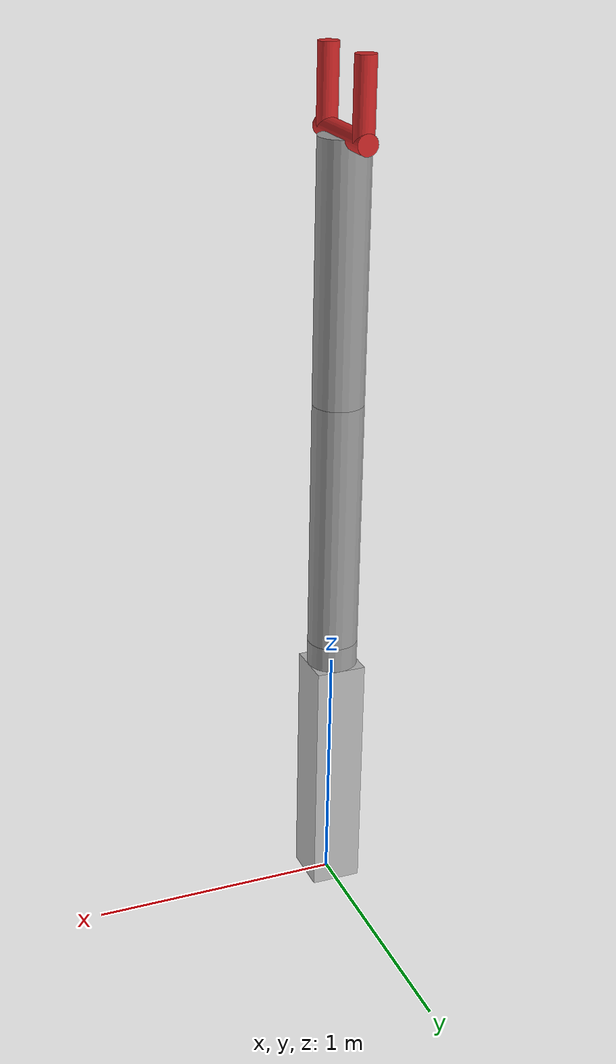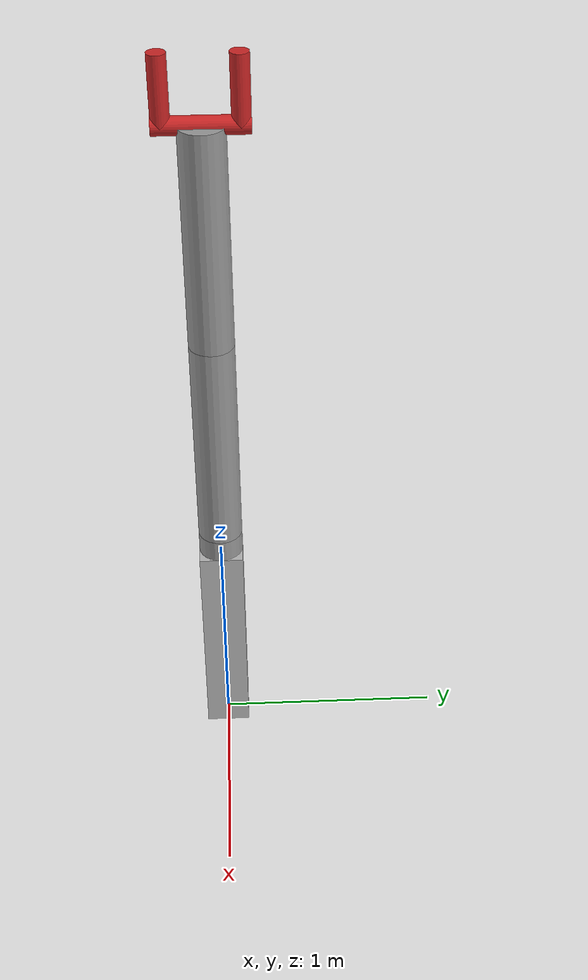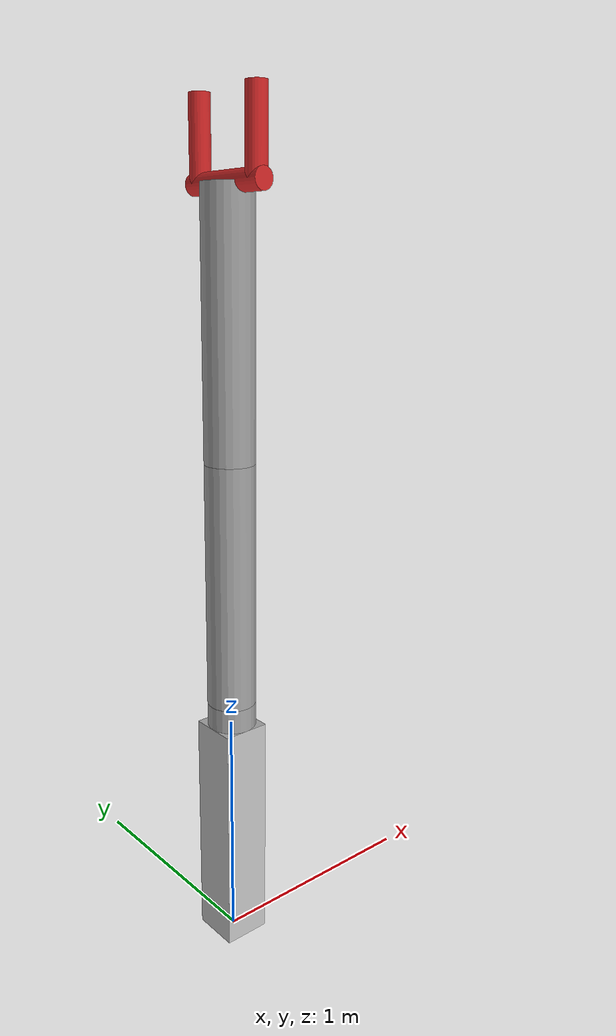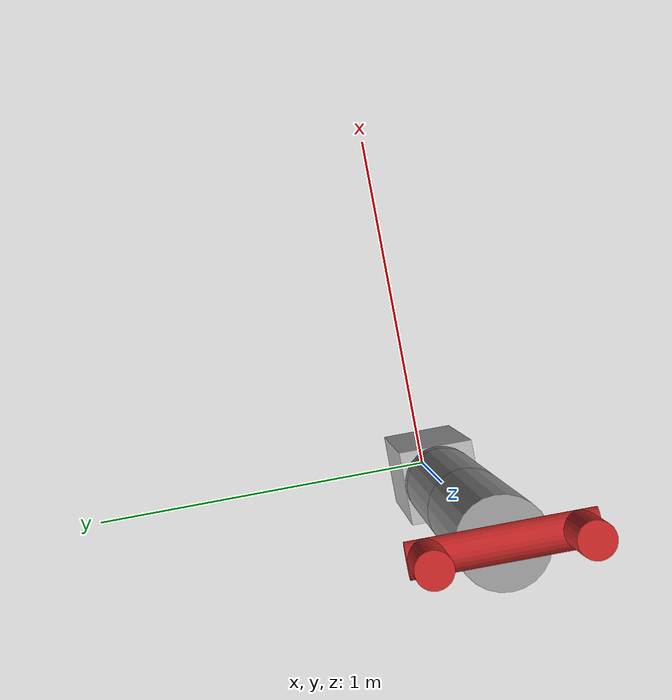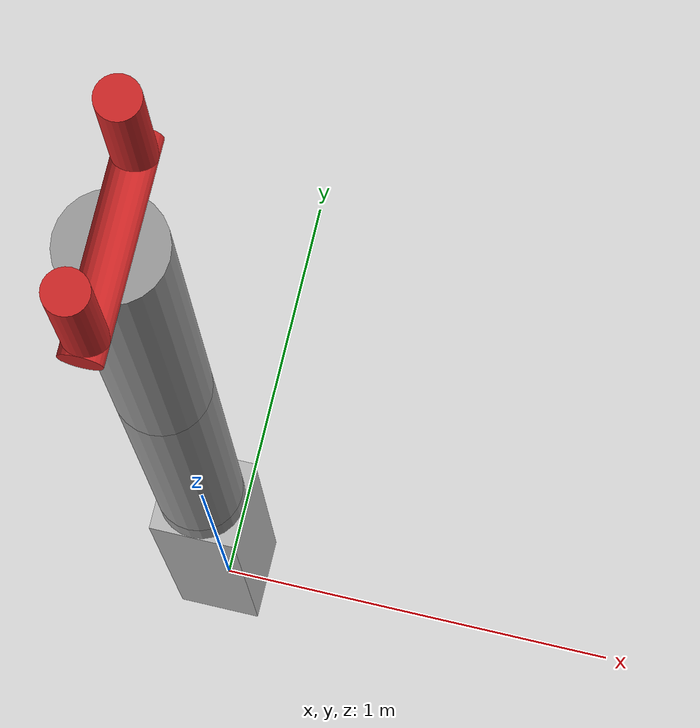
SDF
<?xml version="1.0" encoding="UTF-8"?>
<sdf version='1.5'>
  <model name='gripper_robot'>
    <link name='base_link'>
      <pose frame=''>0 0 0 0 -0 0</pose>
      <inertial>
        <pose frame=''>0 0 0.5 0 -0 0</pose>
        <mass>1</mass>
        <inertia>
          <ixx>1</ixx>
          <ixy>0</ixy>
          <ixz>0</ixz>
          <iyy>1</iyy>
          <iyz>0</iyz>
          <izz>1</izz>
        </inertia>
      </inertial>
      <collision name='base_link_collision'>
        <pose frame=''>0 0 0.5 0 -0 0</pose>
        <geometry>
          <box>
            <size>0.2 0.2 0.7</size>
          </box>
        </geometry>
      </collision>
      <visual name='base_link_visual'>
        <pose frame=''>0 0 0.5 0 -0 0</pose>
        <geometry>
          <box>
            <size>0.2 0.2 1</size>
          </box>
        </geometry>
      </visual>
    </link>
    <joint name='joint_fix' type='revolute'>
      <child>base_link</child>
      <parent>world</parent>
      <axis>
        <limit>
          <lower>0</lower>
          <upper>0</upper>
        </limit>
        <dynamics>
          <damping>0</damping>
          <friction>0</friction>
          <spring_reference>0</spring_reference>
          <spring_stiffness>0</spring_stiffness>
        </dynamics>
        <use_parent_model_frame>1</use_parent_model_frame>
        <xyz>0 0 1</xyz>
      </axis>
    </joint>
    <link name='link1'>
      <pose frame=''>0 0 1 0 -0 0</pose>
      <inertial>
        <pose frame=''>0 0 0.05 0 -0 0</pose>
        <mass>1</mass>
        <inertia>
          <ixx>0.001</ixx>
          <ixy>0</ixy>
          <ixz>0</ixz>
          <iyy>0.001</iyy>
          <iyz>0</iyz>
          <izz>0.001</izz>
        </inertia>
      </inertial>
      <collision name='link1_collision'>
        <pose frame=''>0 0 0.05 0 -0 0</pose>
        <geometry>
          <cylinder>
            <length>0.1</length>
            <radius>0.1</radius>
          </cylinder>
        </geometry>
        <surface>
          <contact>
            <ode/>
          </contact>
          <friction>
            <ode/>
          </friction>
        </surface>
      </collision>
      <visual name='link1_visual'>
        <pose frame=''>0 0 0.05 0 -0 0</pose>
        <geometry>
          <cylinder>
            <length>0.1</length>
            <radius>0.1</radius>
          </cylinder>
        </geometry>
        <material>
          <script>
            <name>Gazebo/Grey</name>
            <uri>__default__</uri>
          </script>
        </material>
      </visual>
      <gravity>1</gravity>
      <velocity_decay/>
      <self_collide>0</self_collide>
    </link>
    <joint name='joint1' type='revolute'>
      <child>link1</child>
      <parent>base_link</parent>
      <axis>
        <xyz>0 0 1</xyz>
        <limit>
          <lower>-1.5708</lower>
          <upper>1.5708</upper>
          <effort>100</effort>
          <velocity>100</velocity>
        </limit>
        <dynamics>
          <spring_reference>0</spring_reference>
          <spring_stiffness>0</spring_stiffness>
        </dynamics>
        <use_parent_model_frame>1</use_parent_model_frame>
      </axis>
    </joint>
    <link name='link2'>
      <pose frame=''>0 0 1.1 0 -0 0</pose>
      <inertial>
        <pose frame=''>0 0 0.5 0 -0 0</pose>
        <mass>1</mass>
        <inertia>
          <ixx>0.1</ixx>
          <ixy>0</ixy>
          <ixz>0</ixz>
          <iyy>0.1</iyy>
          <iyz>0</iyz>
          <izz>0.005</izz>
        </inertia>
      </inertial>
      <collision name='link2_collision'>
        <pose frame=''>0 0 0.5 0 -0 0</pose>
        <geometry>
          <cylinder>
            <length>1</length>
            <radius>0.1</radius>
          </cylinder>
        </geometry>
        <surface>
          <contact>
            <ode/>
          </contact>
          <friction>
            <ode/>
          </friction>
        </surface>
      </collision>
      <visual name='link2_visual'>
        <pose frame=''>0 0 0.5 0 -0 0</pose>
        <geometry>
          <cylinder>
            <length>1</length>
            <radius>0.1</radius>
          </cylinder>
        </geometry>
        <material>
          <script>
            <name>Gazebo/Grey</name>
            <uri>__default__</uri>
          </script>
        </material>
      </visual>
      <gravity>1</gravity>
      <velocity_decay/>
      <self_collide>0</self_collide>
    </link>
    <joint name='joint2' type='revolute'>
      <child>link2</child>
      <parent>link1</parent>
      <axis>
        <xyz>0 1 0</xyz>
        <limit>
          <lower>-0.1</lower>
          <upper>1.5708</upper>
          <effort>100</effort>
          <velocity>100</velocity>
        </limit>
        <dynamics>
          <spring_reference>0</spring_reference>
          <spring_stiffness>0</spring_stiffness>
        </dynamics>
        <use_parent_model_frame>1</use_parent_model_frame>
      </axis>
    </joint>
    <link name='link3'>
      <pose frame=''>0 0 2.1 0 -0 0</pose>
      <inertial>
        <pose frame=''>0 0 0.5 0 -0 0</pose>
        <mass>1</mass>
        <inertia>
          <ixx>0.1</ixx>
          <ixy>0</ixy>
          <ixz>0</ixz>
          <iyy>0.1</iyy>
          <iyz>0</iyz>
          <izz>0.005</izz>
        </inertia>
      </inertial>
      <collision name='link3_collision'>
        <pose frame=''>0 0 0.5 0 -0 0</pose>
        <geometry>
          <cylinder>
            <length>1</length>
            <radius>0.1</radius>
          </cylinder>
        </geometry>
        <surface>
          <contact>
            <ode/>
          </contact>
          <friction>
            <ode/>
          </friction>
        </surface>
      </collision>
      <visual name='link3_visual'>
        <pose frame=''>0 0 0.5 0 -0 0</pose>
        <geometry>
          <cylinder>
            <length>1</length>
            <radius>0.1</radius>
          </cylinder>
        </geometry>
        <material>
          <script>
            <name>Gazebo/Grey</name>
            <uri>__default__</uri>
          </script>
        </material>
      </visual>
      <gravity>1</gravity>
      <velocity_decay/>
      <self_collide>0</self_collide>
    </link>
    <joint name='joint3' type='revolute'>
      <child>link3</child>
      <parent>link2</parent>
      <axis>
        <xyz>0 1 0</xyz>
        <limit>
          <lower>-0.1</lower>
          <upper>3.1416</upper>
          <effort>100</effort>
          <velocity>100</velocity>
        </limit>
        <dynamics>
          <spring_reference>0</spring_reference>
          <spring_stiffness>0</spring_stiffness>
        </dynamics>
        <use_parent_model_frame>1</use_parent_model_frame>
      </axis>
    </joint>
    <link name='link4'>
      <pose frame=''>0 0 3.1 0 -0 0</pose>
      <inertial>
        <pose frame=''>0 0 0 1.5708 -0 0</pose>
        <mass>0.4</mass>
        <inertia>
          <ixx>0.05</ixx>
          <ixy>0</ixy>
          <ixz>0</ixz>
          <iyy>0.002</iyy>
          <iyz>0</iyz>
          <izz>0.05</izz>
        </inertia>
      </inertial>
      <collision name='link4_collision'>
        <pose frame=''>0 0 0 1.5708 -0 0</pose>
        <geometry>
          <cylinder>
            <length>0.4</length>
            <radius>0.04</radius>
          </cylinder>
        </geometry>
        <surface>
          <contact>
            <ode/>
          </contact>
          <friction>
            <ode/>
          </friction>
        </surface>
      </collision>
      <visual name='link4_visual'>
        <pose frame=''>0 0 0 1.5708 -0 0</pose>
        <geometry>
          <cylinder>
            <length>0.4</length>
            <radius>0.04</radius>
          </cylinder>
        </geometry>
        <material>
          <script>
            <name>Gazebo/Red</name>
            <uri>__default__</uri>
          </script>
        </material>
      </visual>
      <gravity>1</gravity>
      <velocity_decay/>
      <self_collide>0</self_collide>
    </link>
    <joint name='joint4' type='revolute'>
      <child>link4</child>
      <parent>link3</parent>
      <axis>
        <xyz>0 1 0</xyz>
        <limit>
          <lower>-1.5708</lower>
          <upper>1.5708</upper>
          <effort>100</effort>
          <velocity>100</velocity>
        </limit>
        <dynamics>
          <spring_reference>0</spring_reference>
          <spring_stiffness>0</spring_stiffness>
        </dynamics>
        <use_parent_model_frame>1</use_parent_model_frame>
      </axis>
    </joint>
    <link name='link5'>
      <pose frame=''>0 0.16 3.1 0 -0 0</pose>
      <inertial>
        <pose frame=''>0 0 0.15 0 -0 0</pose>
        <mass>0.2</mass>
        <inertia>
          <ixx>0.02</ixx>
          <ixy>0</ixy>
          <ixz>0</ixz>
          <iyy>0.02</iyy>
          <iyz>0</iyz>
          <izz>0.001</izz>
        </inertia>
      </inertial>
      <collision name='link5_collision'>
        <pose frame=''>0 0 0.15 0 -0 0</pose>
        <geometry>
          <cylinder>
            <length>0.3</length>
            <radius>0.04</radius>
          </cylinder>
        </geometry>
        <surface>
          <contact>
            <ode/>
          </contact>
          <friction>
            <ode/>
          </friction>
        </surface>
      </collision>
      <visual name='link5_visual'>
        <pose frame=''>0 0 0.15 0 -0 0</pose>
        <geometry>
          <cylinder>
            <length>0.3</length>
            <radius>0.04</radius>
          </cylinder>
        </geometry>
        <material>
          <script>
            <name>Gazebo/Red</name>
            <uri>__default__</uri>
          </script>
        </material>
      </visual>
      <gravity>1</gravity>
      <velocity_decay/>
      <self_collide>0</self_collide>
    </link>
    <joint name='joint5' type='prismatic'>
      <child>link5</child>
      <parent>link4</parent>
      <axis>
        <xyz>0 1 0</xyz>
        <limit>
          <lower>-0.16</lower>
          <upper>0</upper>
          <effort>100</effort>
          <velocity>100</velocity>
        </limit>
        <dynamics>
          <spring_reference>0</spring_reference>
          <spring_stiffness>0</spring_stiffness>
        </dynamics>
        <use_parent_model_frame>1</use_parent_model_frame>
      </axis>
    </joint>
    <link name='link6'>
      <pose frame=''>0 -0.16 3.1 0 -0 0</pose>
      <inertial>
        <pose frame=''>0 0 0.15 0 -0 0</pose>
        <mass>0.2</mass>
        <inertia>
          <ixx>0.02</ixx>
          <ixy>0</ixy>
          <ixz>0</ixz>
          <iyy>0.02</iyy>
          <iyz>0</iyz>
          <izz>0.001</izz>
        </inertia>
      </inertial>
      <collision name='link6_collision'>
        <pose frame=''>0 0 0.15 0 -0 0</pose>
        <geometry>
          <cylinder>
            <length>0.3</length>
            <radius>0.04</radius>
          </cylinder>
        </geometry>
        <surface>
          <contact>
            <ode/>
          </contact>
          <friction>
            <ode/>
          </friction>
        </surface>
      </collision>
      <visual name='link6_visual'>
        <pose frame=''>0 0 0.15 0 -0 0</pose>
        <geometry>
          <cylinder>
            <length>0.3</length>
            <radius>0.04</radius>
          </cylinder>
        </geometry>
        <material>
          <script>
            <name>Gazebo/Red</name>
            <uri>__default__</uri>
          </script>
        </material>
      </visual>
      <gravity>1</gravity>
      <velocity_decay/>
      <self_collide>0</self_collide>
    </link>
    <joint name='joint6' type='prismatic'>
      <child>link6</child>
      <parent>link4</parent>
      <axis>
        <xyz>0 1 0</xyz>
        <limit>
          <lower>0</lower>
          <upper>0.16</upper>
          <effort>100</effort>
          <velocity>100</velocity>
        </limit>
        <dynamics>
          <spring_reference>0</spring_reference>
          <spring_stiffness>0</spring_stiffness>
        </dynamics>
        <use_parent_model_frame>1</use_parent_model_frame>
      </axis>
    </joint>
  </model>
</sdf>
